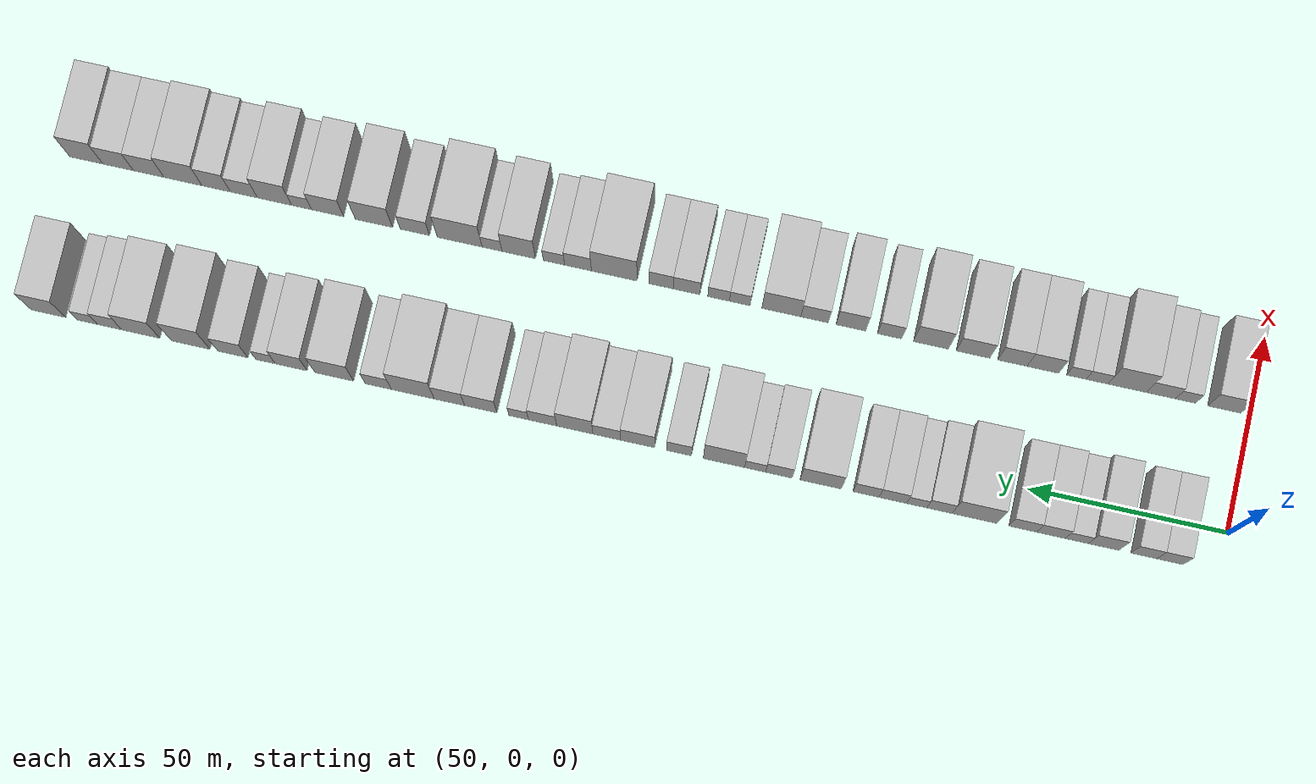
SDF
<sdf version="1.6">
 <world name="default">
  <model name="building_37">
   <static>1</static>
   <pose>50.0000 12.5911 0 0.000000 0.000000 0.000000</pose>
   <link name="link">
    <pose>0 0 7.50 0 0 0</pose>
    <collision name="collision"><geometry><box><size>20.0000 6.5872 15.0000</size></box></geometry></collision>
    <visual name="visual">
     <cast_shadows>0</cast_shadows>
     <geometry><box><size>20.0000 6.5872 15.0000</size></box></geometry>
     <material>
      <script>
       <uri>model://HANNAS_wall/materials/scripts</uri>
       <uri>model://HANNAS_wall/materials/textures</uri>
       <name>vrc/HANNAS_wall</name>
      </script>
     </material>
    </visual>
   </link>
  </model>
  <model name="building_38">
   <static>1</static>
   <pose>50.0000 19.1160 0 0.000000 0.000000 0.000000</pose>
   <link name="link">
    <pose>0 0 7.50 0 0 0</pose>
    <collision name="collision"><geometry><box><size>20.0000 6.4626 15.0000</size></box></geometry></collision>
    <visual name="visual">
     <cast_shadows>0</cast_shadows>
     <geometry><box><size>20.0000 6.4626 15.0000</size></box></geometry>
     <material>
      <script>
       <uri>model://HANNAS_wall/materials/scripts</uri>
       <uri>model://HANNAS_wall/materials/textures</uri>
       <name>vrc/HANNAS_wall</name>
      </script>
     </material>
    </visual>
   </link>
  </model>
  <model name="building_39">
   <static>1</static>
   <pose>50.0000 29.1546 0 0.000000 0.000000 0.000000</pose>
   <link name="link">
    <pose>0 0 9.00 0 0 0</pose>
    <collision name="collision"><geometry><box><size>20.0000 7.6145 18.0000</size></box></geometry></collision>
    <visual name="visual">
     <cast_shadows>0</cast_shadows>
     <geometry><box><size>20.0000 7.6145 18.0000</size></box></geometry>
     <material>
      <script>
       <uri>model://HANNAS_wall/materials/scripts</uri>
       <uri>model://HANNAS_wall/materials/textures</uri>
       <name>vrc/HANNAS_wall</name>
      </script>
     </material>
    </visual>
   </link>
  </model>
  <model name="building_40">
   <static>1</static>
   <pose>50.0000 35.8505 0 0.000000 0.000000 0.000000</pose>
   <link name="link">
    <pose>0 0 6.00 0 0 0</pose>
    <collision name="collision"><geometry><box><size>20.0000 5.7773 12.0000</size></box></geometry></collision>
    <visual name="visual">
     <cast_shadows>0</cast_shadows>
     <geometry><box><size>20.0000 5.7773 12.0000</size></box></geometry>
     <material>
      <script>
       <uri>model://HANNAS_wall/materials/scripts</uri>
       <uri>model://HANNAS_wall/materials/textures</uri>
       <name>vrc/HANNAS_wall</name>
      </script>
     </material>
    </visual>
   </link>
  </model>
  <model name="building_41">
   <static>1</static>
   <pose>50.0000 42.3434 0 0.000000 0.000000 0.000000</pose>
   <link name="link">
    <pose>0 0 7.50 0 0 0</pose>
    <collision name="collision"><geometry><box><size>20.0000 7.2085 15.0000</size></box></geometry></collision>
    <visual name="visual">
     <cast_shadows>0</cast_shadows>
     <geometry><box><size>20.0000 7.2085 15.0000</size></box></geometry>
     <material>
      <script>
       <uri>model://HANNAS_wall/materials/scripts</uri>
       <uri>model://HANNAS_wall/materials/textures</uri>
       <name>vrc/HANNAS_wall</name>
      </script>
     </material>
    </visual>
   </link>
  </model>
  <model name="building_42">
   <static>1</static>
   <pose>50.0000 49.4130 0 0.000000 0.000000 0.000000</pose>
   <link name="link">
    <pose>0 0 7.50 0 0 0</pose>
    <collision name="collision"><geometry><box><size>20.0000 6.9307 15.0000</size></box></geometry></collision>
    <visual name="visual">
     <cast_shadows>0</cast_shadows>
     <geometry><box><size>20.0000 6.9307 15.0000</size></box></geometry>
     <material>
      <script>
       <uri>model://HANNAS_wall/materials/scripts</uri>
       <uri>model://HANNAS_wall/materials/textures</uri>
       <name>vrc/HANNAS_wall</name>
      </script>
     </material>
    </visual>
   </link>
  </model>
  <model name="building_43">
   <static>1</static>
   <pose>50.0000 61.4989 0 0.000000 0.000000 0.000000</pose>
   <link name="link">
    <pose>0 0 12.00 0 0 0</pose>
    <collision name="collision"><geometry><box><size>20.0000 11.2410 24.0000</size></box></geometry></collision>
    <visual name="visual">
     <cast_shadows>0</cast_shadows>
     <geometry><box><size>20.0000 11.2410 24.0000</size></box></geometry>
     <material>
      <script>
       <uri>model://HANNAS_wall/materials/scripts</uri>
       <uri>model://HANNAS_wall/materials/textures</uri>
       <name>vrc/HANNAS_wall</name>
      </script>
     </material>
    </visual>
   </link>
  </model>
  <model name="building_44">
   <static>1</static>
   <pose>50.0000 70.3000 0 0.000000 0.000000 0.000000</pose>
   <link name="link">
    <pose>0 0 7.50 0 0 0</pose>
    <collision name="collision"><geometry><box><size>20.0000 6.3613 15.0000</size></box></geometry></collision>
    <visual name="visual">
     <cast_shadows>0</cast_shadows>
     <geometry><box><size>20.0000 6.3613 15.0000</size></box></geometry>
     <material>
      <script>
       <uri>model://HANNAS_wall/materials/scripts</uri>
       <uri>model://HANNAS_wall/materials/textures</uri>
       <name>vrc/HANNAS_wall</name>
      </script>
     </material>
    </visual>
   </link>
  </model>
  <model name="building_45">
   <static>1</static>
   <pose>50.0000 76.0259 0 0.000000 0.000000 0.000000</pose>
   <link name="link">
    <pose>0 0 6.00 0 0 0</pose>
    <collision name="collision"><geometry><box><size>20.0000 5.0905 12.0000</size></box></geometry></collision>
    <visual name="visual">
     <cast_shadows>0</cast_shadows>
     <geometry><box><size>20.0000 5.0905 12.0000</size></box></geometry>
     <material>
      <script>
       <uri>model://HANNAS_wall/materials/scripts</uri>
       <uri>model://HANNAS_wall/materials/textures</uri>
       <name>vrc/HANNAS_wall</name>
      </script>
     </material>
    </visual>
   </link>
  </model>
  <model name="building_46">
   <static>1</static>
   <pose>50.0000 82.0209 0 0.000000 0.000000 0.000000</pose>
   <link name="link">
    <pose>0 0 7.50 0 0 0</pose>
    <collision name="collision"><geometry><box><size>20.0000 6.8995 15.0000</size></box></geometry></collision>
    <visual name="visual">
     <cast_shadows>0</cast_shadows>
     <geometry><box><size>20.0000 6.8995 15.0000</size></box></geometry>
     <material>
      <script>
       <uri>model://HANNAS_wall/materials/scripts</uri>
       <uri>model://HANNAS_wall/materials/textures</uri>
       <name>vrc/HANNAS_wall</name>
      </script>
     </material>
    </visual>
   </link>
  </model>
  <model name="building_47">
   <static>1</static>
   <pose>50.0000 88.7367 0 0.000000 0.000000 0.000000</pose>
   <link name="link">
    <pose>0 0 7.50 0 0 0</pose>
    <collision name="collision"><geometry><box><size>20.0000 6.5323 15.0000</size></box></geometry></collision>
    <visual name="visual">
     <cast_shadows>0</cast_shadows>
     <geometry><box><size>20.0000 6.5323 15.0000</size></box></geometry>
     <material>
      <script>
       <uri>model://HANNAS_wall/materials/scripts</uri>
       <uri>model://HANNAS_wall/materials/textures</uri>
       <name>vrc/HANNAS_wall</name>
      </script>
     </material>
    </visual>
   </link>
  </model>
  <model name="building_48">
   <static>1</static>
   <pose>50.0000 100.1746 0 0.000000 0.000000 0.000000</pose>
   <link name="link">
    <pose>0 0 10.50 0 0 0</pose>
    <collision name="collision"><geometry><box><size>20.0000 10.3434 21.0000</size></box></geometry></collision>
    <visual name="visual">
     <cast_shadows>0</cast_shadows>
     <geometry><box><size>20.0000 10.3434 21.0000</size></box></geometry>
     <material>
      <script>
       <uri>model://HANNAS_wall/materials/scripts</uri>
       <uri>model://HANNAS_wall/materials/textures</uri>
       <name>vrc/HANNAS_wall</name>
      </script>
     </material>
    </visual>
   </link>
  </model>
  <model name="building_49">
   <static>1</static>
   <pose>50.0000 110.6861 0 0.000000 0.000000 0.000000</pose>
   <link name="link">
    <pose>0 0 7.50 0 0 0</pose>
    <collision name="collision"><geometry><box><size>20.0000 6.6797 15.0000</size></box></geometry></collision>
    <visual name="visual">
     <cast_shadows>0</cast_shadows>
     <geometry><box><size>20.0000 6.6797 15.0000</size></box></geometry>
     <material>
      <script>
       <uri>model://HANNAS_wall/materials/scripts</uri>
       <uri>model://HANNAS_wall/materials/textures</uri>
       <name>vrc/HANNAS_wall</name>
      </script>
     </material>
    </visual>
   </link>
  </model>
  <model name="building_50">
   <static>1</static>
   <pose>50.0000 116.6713 0 0.000000 0.000000 0.000000</pose>
   <link name="link">
    <pose>0 0 6.00 0 0 0</pose>
    <collision name="collision"><geometry><box><size>20.0000 5.2907 12.0000</size></box></geometry></collision>
    <visual name="visual">
     <cast_shadows>0</cast_shadows>
     <geometry><box><size>20.0000 5.2907 12.0000</size></box></geometry>
     <material>
      <script>
       <uri>model://HANNAS_wall/materials/scripts</uri>
       <uri>model://HANNAS_wall/materials/textures</uri>
       <name>vrc/HANNAS_wall</name>
      </script>
     </material>
    </visual>
   </link>
  </model>
  <model name="building_51">
   <static>1</static>
   <pose>50.0000 124.5184 0 0.000000 0.000000 0.000000</pose>
   <link name="link">
    <pose>0 0 12.00 0 0 0</pose>
    <collision name="collision"><geometry><box><size>20.0000 10.4035 24.0000</size></box></geometry></collision>
    <visual name="visual">
     <cast_shadows>0</cast_shadows>
     <geometry><box><size>20.0000 10.4035 24.0000</size></box></geometry>
     <material>
      <script>
       <uri>model://HANNAS_wall/materials/scripts</uri>
       <uri>model://HANNAS_wall/materials/textures</uri>
       <name>vrc/HANNAS_wall</name>
      </script>
     </material>
    </visual>
   </link>
  </model>
  <model name="building_52">
   <static>1</static>
   <pose>50.0000 135.8873 0 0.000000 0.000000 0.000000</pose>
   <link name="link">
    <pose>0 0 7.50 0 0 0</pose>
    <collision name="collision"><geometry><box><size>20.0000 6.3343 15.0000</size></box></geometry></collision>
    <visual name="visual">
     <cast_shadows>0</cast_shadows>
     <geometry><box><size>20.0000 6.3343 15.0000</size></box></geometry>
     <material>
      <script>
       <uri>model://HANNAS_wall/materials/scripts</uri>
       <uri>model://HANNAS_wall/materials/textures</uri>
       <name>vrc/HANNAS_wall</name>
      </script>
     </material>
    </visual>
   </link>
  </model>
  <model name="building_53">
   <static>1</static>
   <pose>50.0000 146.3460 0 0.000000 0.000000 0.000000</pose>
   <link name="link">
    <pose>0 0 9.00 0 0 0</pose>
    <collision name="collision"><geometry><box><size>20.0000 8.5831 18.0000</size></box></geometry></collision>
    <visual name="visual">
     <cast_shadows>0</cast_shadows>
     <geometry><box><size>20.0000 8.5831 18.0000</size></box></geometry>
     <material>
      <script>
       <uri>model://HANNAS_wall/materials/scripts</uri>
       <uri>model://HANNAS_wall/materials/textures</uri>
       <name>vrc/HANNAS_wall</name>
      </script>
     </material>
    </visual>
   </link>
  </model>
  <model name="building_54">
   <static>1</static>
   <pose>50.0000 154.1503 0 0.000000 0.000000 0.000000</pose>
   <link name="link">
    <pose>0 0 7.50 0 0 0</pose>
    <collision name="collision"><geometry><box><size>20.0000 7.0254 15.0000</size></box></geometry></collision>
    <visual name="visual">
     <cast_shadows>0</cast_shadows>
     <geometry><box><size>20.0000 7.0254 15.0000</size></box></geometry>
     <material>
      <script>
       <uri>model://HANNAS_wall/materials/scripts</uri>
       <uri>model://HANNAS_wall/materials/textures</uri>
       <name>vrc/HANNAS_wall</name>
      </script>
     </material>
    </visual>
   </link>
  </model>
  <model name="building_55">
   <static>1</static>
   <pose>50.0000 162.2373 0 0.000000 0.000000 0.000000</pose>
   <link name="link">
    <pose>0 0 10.50 0 0 0</pose>
    <collision name="collision"><geometry><box><size>20.0000 9.1486 21.0000</size></box></geometry></collision>
    <visual name="visual">
     <cast_shadows>0</cast_shadows>
     <geometry><box><size>20.0000 9.1486 21.0000</size></box></geometry>
     <material>
      <script>
       <uri>model://HANNAS_wall/materials/scripts</uri>
       <uri>model://HANNAS_wall/materials/textures</uri>
       <name>vrc/HANNAS_wall</name>
      </script>
     </material>
    </visual>
   </link>
  </model>
  <model name="building_56">
   <static>1</static>
   <pose>50.0000 170.3961 0 0.000000 0.000000 0.000000</pose>
   <link name="link">
    <pose>0 0 7.50 0 0 0</pose>
    <collision name="collision"><geometry><box><size>20.0000 7.1690 15.0000</size></box></geometry></collision>
    <visual name="visual">
     <cast_shadows>0</cast_shadows>
     <geometry><box><size>20.0000 7.1690 15.0000</size></box></geometry>
     <material>
      <script>
       <uri>model://HANNAS_wall/materials/scripts</uri>
       <uri>model://HANNAS_wall/materials/textures</uri>
       <name>vrc/HANNAS_wall</name>
      </script>
     </material>
    </visual>
   </link>
  </model>
  <model name="building_57">
   <static>1</static>
   <pose>50.0000 176.4554 0 0.000000 0.000000 0.000000</pose>
   <link name="link">
    <pose>0 0 6.00 0 0 0</pose>
    <collision name="collision"><geometry><box><size>20.0000 4.9496 12.0000</size></box></geometry></collision>
    <visual name="visual">
     <cast_shadows>0</cast_shadows>
     <geometry><box><size>20.0000 4.9496 12.0000</size></box></geometry>
     <material>
      <script>
       <uri>model://HANNAS_wall/materials/scripts</uri>
       <uri>model://HANNAS_wall/materials/textures</uri>
       <name>vrc/HANNAS_wall</name>
      </script>
     </material>
    </visual>
   </link>
  </model>
  <model name="building_58">
   <static>1</static>
   <pose>50.0000 186.0385 0 0.000000 0.000000 0.000000</pose>
   <link name="link">
    <pose>0 0 9.00 0 0 0</pose>
    <collision name="collision"><geometry><box><size>20.0000 8.2166 18.0000</size></box></geometry></collision>
    <visual name="visual">
     <cast_shadows>0</cast_shadows>
     <geometry><box><size>20.0000 8.2166 18.0000</size></box></geometry>
     <material>
      <script>
       <uri>model://HANNAS_wall/materials/scripts</uri>
       <uri>model://HANNAS_wall/materials/textures</uri>
       <name>vrc/HANNAS_wall</name>
      </script>
     </material>
    </visual>
   </link>
  </model>
  <model name="building_59">
   <static>1</static>
   <pose>50.0000 194.0281 0 0.000000 0.000000 0.000000</pose>
   <link name="link">
    <pose>0 0 9.00 0 0 0</pose>
    <collision name="collision"><geometry><box><size>20.0000 7.7626 18.0000</size></box></geometry></collision>
    <visual name="visual">
     <cast_shadows>0</cast_shadows>
     <geometry><box><size>20.0000 7.7626 18.0000</size></box></geometry>
     <material>
      <script>
       <uri>model://HANNAS_wall/materials/scripts</uri>
       <uri>model://HANNAS_wall/materials/textures</uri>
       <name>vrc/HANNAS_wall</name>
      </script>
     </material>
    </visual>
   </link>
  </model>
  <model name="building_60">
   <static>1</static>
   <pose>50.0000 203.3651 0 0.000000 0.000000 0.000000</pose>
   <link name="link">
    <pose>0 0 12.00 0 0 0</pose>
    <collision name="collision"><geometry><box><size>20.0000 10.9114 24.0000</size></box></geometry></collision>
    <visual name="visual">
     <cast_shadows>0</cast_shadows>
     <geometry><box><size>20.0000 10.9114 24.0000</size></box></geometry>
     <material>
      <script>
       <uri>model://HANNAS_wall/materials/scripts</uri>
       <uri>model://HANNAS_wall/materials/textures</uri>
       <name>vrc/HANNAS_wall</name>
      </script>
     </material>
    </visual>
   </link>
  </model>
  <model name="building_61">
   <static>1</static>
   <pose>50.0000 212.1412 0 0.000000 0.000000 0.000000</pose>
   <link name="link">
    <pose>0 0 7.50 0 0 0</pose>
    <collision name="collision"><geometry><box><size>20.0000 6.6408 15.0000</size></box></geometry></collision>
    <visual name="visual">
     <cast_shadows>0</cast_shadows>
     <geometry><box><size>20.0000 6.6408 15.0000</size></box></geometry>
     <material>
      <script>
       <uri>model://HANNAS_wall/materials/scripts</uri>
       <uri>model://HANNAS_wall/materials/textures</uri>
       <name>vrc/HANNAS_wall</name>
      </script>
     </material>
    </visual>
   </link>
  </model>
  <model name="building_62">
   <static>1</static>
   <pose>50.0000 223.3910 0 0.000000 0.000000 0.000000</pose>
   <link name="link">
    <pose>0 0 10.50 0 0 0</pose>
    <collision name="collision"><geometry><box><size>20.0000 9.8587 21.0000</size></box></geometry></collision>
    <visual name="visual">
     <cast_shadows>0</cast_shadows>
     <geometry><box><size>20.0000 9.8587 21.0000</size></box></geometry>
     <material>
      <script>
       <uri>model://HANNAS_wall/materials/scripts</uri>
       <uri>model://HANNAS_wall/materials/textures</uri>
       <name>vrc/HANNAS_wall</name>
      </script>
     </material>
    </visual>
   </link>
  </model>
  <model name="building_63">
   <static>1</static>
   <pose>50.0000 234.3536 0 0.000000 0.000000 0.000000</pose>
   <link name="link">
    <pose>0 0 9.00 0 0 0</pose>
    <collision name="collision"><geometry><box><size>20.0000 8.0664 18.0000</size></box></geometry></collision>
    <visual name="visual">
     <cast_shadows>0</cast_shadows>
     <geometry><box><size>20.0000 8.0664 18.0000</size></box></geometry>
     <material>
      <script>
       <uri>model://HANNAS_wall/materials/scripts</uri>
       <uri>model://HANNAS_wall/materials/textures</uri>
       <name>vrc/HANNAS_wall</name>
      </script>
     </material>
    </visual>
   </link>
  </model>
  <model name="building_64">
   <static>1</static>
   <pose>50.0000 240.9053 0 0.000000 0.000000 0.000000</pose>
   <link name="link">
    <pose>0 0 6.00 0 0 0</pose>
    <collision name="collision"><geometry><box><size>20.0000 5.0372 12.0000</size></box></geometry></collision>
    <visual name="visual">
     <cast_shadows>0</cast_shadows>
     <geometry><box><size>20.0000 5.0372 12.0000</size></box></geometry>
     <material>
      <script>
       <uri>model://HANNAS_wall/materials/scripts</uri>
       <uri>model://HANNAS_wall/materials/textures</uri>
       <name>vrc/HANNAS_wall</name>
      </script>
     </material>
    </visual>
   </link>
  </model>
  <model name="building_65">
   <static>1</static>
   <pose>50.0000 249.2791 0 0.000000 0.000000 0.000000</pose>
   <link name="link">
    <pose>0 0 9.00 0 0 0</pose>
    <collision name="collision"><geometry><box><size>20.0000 7.7104 18.0000</size></box></geometry></collision>
    <visual name="visual">
     <cast_shadows>0</cast_shadows>
     <geometry><box><size>20.0000 7.7104 18.0000</size></box></geometry>
     <material>
      <script>
       <uri>model://HANNAS_wall/materials/scripts</uri>
       <uri>model://HANNAS_wall/materials/textures</uri>
       <name>vrc/HANNAS_wall</name>
      </script>
     </material>
    </visual>
   </link>
  </model>
  <model name="building_66">
   <static>1</static>
   <pose>50.0000 260.0506 0 0.000000 0.000000 0.000000</pose>
   <link name="link">
    <pose>0 0 12.00 0 0 0</pose>
    <collision name="collision"><geometry><box><size>20.0000 9.8325 24.0000</size></box></geometry></collision>
    <visual name="visual">
     <cast_shadows>0</cast_shadows>
     <geometry><box><size>20.0000 9.8325 24.0000</size></box></geometry>
     <material>
      <script>
       <uri>model://HANNAS_wall/materials/scripts</uri>
       <uri>model://HANNAS_wall/materials/textures</uri>
       <name>vrc/HANNAS_wall</name>
      </script>
     </material>
    </visual>
   </link>
  </model>
  <model name="building_67">
   <static>1</static>
   <pose>50.0000 272.7957 0 0.000000 0.000000 0.000000</pose>
   <link name="link">
    <pose>0 0 10.50 0 0 0</pose>
    <collision name="collision"><geometry><box><size>20.0000 9.6578 21.0000</size></box></geometry></collision>
    <visual name="visual">
     <cast_shadows>0</cast_shadows>
     <geometry><box><size>20.0000 9.6578 21.0000</size></box></geometry>
     <material>
      <script>
       <uri>model://HANNAS_wall/materials/scripts</uri>
       <uri>model://HANNAS_wall/materials/textures</uri>
       <name>vrc/HANNAS_wall</name>
      </script>
     </material>
    </visual>
   </link>
  </model>
  <model name="building_68">
   <static>1</static>
   <pose>50.0000 280.7667 0 0.000000 0.000000 0.000000</pose>
   <link name="link">
    <pose>0 0 7.50 0 0 0</pose>
    <collision name="collision"><geometry><box><size>20.0000 6.2843 15.0000</size></box></geometry></collision>
    <visual name="visual">
     <cast_shadows>0</cast_shadows>
     <geometry><box><size>20.0000 6.2843 15.0000</size></box></geometry>
     <material>
      <script>
       <uri>model://HANNAS_wall/materials/scripts</uri>
       <uri>model://HANNAS_wall/materials/textures</uri>
       <name>vrc/HANNAS_wall</name>
      </script>
     </material>
    </visual>
   </link>
  </model>
  <model name="building_69">
   <static>1</static>
   <pose>50.0000 286.5224 0 0.000000 0.000000 0.000000</pose>
   <link name="link">
    <pose>0 0 6.00 0 0 0</pose>
    <collision name="collision"><geometry><box><size>20.0000 5.2271 12.0000</size></box></geometry></collision>
    <visual name="visual">
     <cast_shadows>0</cast_shadows>
     <geometry><box><size>20.0000 5.2271 12.0000</size></box></geometry>
     <material>
      <script>
       <uri>model://HANNAS_wall/materials/scripts</uri>
       <uri>model://HANNAS_wall/materials/textures</uri>
       <name>vrc/HANNAS_wall</name>
      </script>
     </material>
    </visual>
   </link>
  </model>
  <model name="building_70">
   <static>1</static>
   <pose>50.0000 296.5645 0 0.000000 0.000000 0.000000</pose>
   <link name="link">
    <pose>0 0 10.50 0 0 0</pose>
    <collision name="collision"><geometry><box><size>20.0000 8.8572 21.0000</size></box></geometry></collision>
    <visual name="visual">
     <cast_shadows>0</cast_shadows>
     <geometry><box><size>20.0000 8.8572 21.0000</size></box></geometry>
     <material>
      <script>
       <uri>model://HANNAS_wall/materials/scripts</uri>
       <uri>model://HANNAS_wall/materials/textures</uri>
       <name>vrc/HANNAS_wall</name>
      </script>
     </material>
    </visual>
   </link>
  </model>
  <model name="building_103">
   <static>1</static>
   <pose>90.0000 6.5659 0 0.000000 0.000000 0.000000</pose>
   <link name="link">
    <pose>0 0 9.00 0 0 0</pose>
    <collision name="collision"><geometry><box><size>20.0000 8.3223 18.0000</size></box></geometry></collision>
    <visual name="visual">
     <cast_shadows>0</cast_shadows>
     <geometry><box><size>20.0000 8.3223 18.0000</size></box></geometry>
     <material>
      <script>
       <uri>model://HANNAS_wall/materials/scripts</uri>
       <uri>model://HANNAS_wall/materials/textures</uri>
       <name>vrc/HANNAS_wall</name>
      </script>
     </material>
    </visual>
   </link>
  </model>
  <model name="building_104">
   <static>1</static>
   <pose>90.0000 16.2700 0 0.000000 0.000000 0.000000</pose>
   <link name="link">
    <pose>0 0 6.00 0 0 0</pose>
    <collision name="collision"><geometry><box><size>20.0000 5.0860 12.0000</size></box></geometry></collision>
    <visual name="visual">
     <cast_shadows>0</cast_shadows>
     <geometry><box><size>20.0000 5.0860 12.0000</size></box></geometry>
     <material>
      <script>
       <uri>model://HANNAS_wall/materials/scripts</uri>
       <uri>model://HANNAS_wall/materials/textures</uri>
       <name>vrc/HANNAS_wall</name>
      </script>
     </material>
    </visual>
   </link>
  </model>
  <model name="building_105">
   <static>1</static>
   <pose>90.0000 22.4797 0 0.000000 0.000000 0.000000</pose>
   <link name="link">
    <pose>0 0 7.50 0 0 0</pose>
    <collision name="collision"><geometry><box><size>20.0000 7.3333 15.0000</size></box></geometry></collision>
    <visual name="visual">
     <cast_shadows>0</cast_shadows>
     <geometry><box><size>20.0000 7.3333 15.0000</size></box></geometry>
     <material>
      <script>
       <uri>model://HANNAS_wall/materials/scripts</uri>
       <uri>model://HANNAS_wall/materials/textures</uri>
       <name>vrc/HANNAS_wall</name>
      </script>
     </material>
    </visual>
   </link>
  </model>
  <model name="building_106">
   <static>1</static>
   <pose>90.0000 31.0163 0 0.000000 0.000000 0.000000</pose>
   <link name="link">
    <pose>0 0 12.00 0 0 0</pose>
    <collision name="collision"><geometry><box><size>20.0000 9.7400 24.0000</size></box></geometry></collision>
    <visual name="visual">
     <cast_shadows>0</cast_shadows>
     <geometry><box><size>20.0000 9.7400 24.0000</size></box></geometry>
     <material>
      <script>
       <uri>model://HANNAS_wall/materials/scripts</uri>
       <uri>model://HANNAS_wall/materials/textures</uri>
       <name>vrc/HANNAS_wall</name>
      </script>
     </material>
    </visual>
   </link>
  </model>
  <model name="building_107">
   <static>1</static>
   <pose>90.0000 38.6161 0 0.000000 0.000000 0.000000</pose>
   <link name="link">
    <pose>0 0 6.00 0 0 0</pose>
    <collision name="collision"><geometry><box><size>20.0000 5.4595 12.0000</size></box></geometry></collision>
    <visual name="visual">
     <cast_shadows>0</cast_shadows>
     <geometry><box><size>20.0000 5.4595 12.0000</size></box></geometry>
     <material>
      <script>
       <uri>model://HANNAS_wall/materials/scripts</uri>
       <uri>model://HANNAS_wall/materials/textures</uri>
       <name>vrc/HANNAS_wall</name>
      </script>
     </material>
    </visual>
   </link>
  </model>
  <model name="building_108">
   <static>1</static>
   <pose>90.0000 43.8108 0 0.000000 0.000000 0.000000</pose>
   <link name="link">
    <pose>0 0 6.00 0 0 0</pose>
    <collision name="collision"><geometry><box><size>20.0000 4.9299 12.0000</size></box></geometry></collision>
    <visual name="visual">
     <cast_shadows>0</cast_shadows>
     <geometry><box><size>20.0000 4.9299 12.0000</size></box></geometry>
     <material>
      <script>
       <uri>model://HANNAS_wall/materials/scripts</uri>
       <uri>model://HANNAS_wall/materials/textures</uri>
       <name>vrc/HANNAS_wall</name>
      </script>
     </material>
    </visual>
   </link>
  </model>
  <model name="building_109">
   <static>1</static>
   <pose>90.0000 52.2896 0 0.000000 0.000000 0.000000</pose>
   <link name="link">
    <pose>0 0 9.00 0 0 0</pose>
    <collision name="collision"><geometry><box><size>20.0000 8.0279 18.0000</size></box></geometry></collision>
    <visual name="visual">
     <cast_shadows>0</cast_shadows>
     <geometry><box><size>20.0000 8.0279 18.0000</size></box></geometry>
     <material>
      <script>
       <uri>model://HANNAS_wall/materials/scripts</uri>
       <uri>model://HANNAS_wall/materials/textures</uri>
       <name>vrc/HANNAS_wall</name>
      </script>
     </material>
    </visual>
   </link>
  </model>
  <model name="building_110">
   <static>1</static>
   <pose>90.0000 60.0056 0 0.000000 0.000000 0.000000</pose>
   <link name="link">
    <pose>0 0 9.00 0 0 0</pose>
    <collision name="collision"><geometry><box><size>20.0000 7.4041 18.0000</size></box></geometry></collision>
    <visual name="visual">
     <cast_shadows>0</cast_shadows>
     <geometry><box><size>20.0000 7.4041 18.0000</size></box></geometry>
     <material>
      <script>
       <uri>model://HANNAS_wall/materials/scripts</uri>
       <uri>model://HANNAS_wall/materials/textures</uri>
       <name>vrc/HANNAS_wall</name>
      </script>
     </material>
    </visual>
   </link>
  </model>
  <model name="building_111">
   <static>1</static>
   <pose>90.0000 69.9619 0 0.000000 0.000000 0.000000</pose>
   <link name="link">
    <pose>0 0 9.00 0 0 0</pose>
    <collision name="collision"><geometry><box><size>20.0000 8.5085 18.0000</size></box></geometry></collision>
    <visual name="visual">
     <cast_shadows>0</cast_shadows>
     <geometry><box><size>20.0000 8.5085 18.0000</size></box></geometry>
     <material>
      <script>
       <uri>model://HANNAS_wall/materials/scripts</uri>
       <uri>model://HANNAS_wall/materials/textures</uri>
       <name>vrc/HANNAS_wall</name>
      </script>
     </material>
    </visual>
   </link>
  </model>
  <model name="building_112">
   <static>1</static>
   <pose>90.0000 80.6357 0 0.000000 0.000000 0.000000</pose>
   <link name="link">
    <pose>0 0 10.50 0 0 0</pose>
    <collision name="collision"><geometry><box><size>20.0000 8.8390 21.0000</size></box></geometry></collision>
    <visual name="visual">
     <cast_shadows>0</cast_shadows>
     <geometry><box><size>20.0000 8.8390 21.0000</size></box></geometry>
     <material>
      <script>
       <uri>model://HANNAS_wall/materials/scripts</uri>
       <uri>model://HANNAS_wall/materials/textures</uri>
       <name>vrc/HANNAS_wall</name>
      </script>
     </material>
    </visual>
   </link>
  </model>
  <model name="building_113">
   <static>1</static>
   <pose>90.0000 91.1337 0 0.000000 0.000000 0.000000</pose>
   <link name="link">
    <pose>0 0 7.50 0 0 0</pose>
    <collision name="collision"><geometry><box><size>20.0000 6.1571 15.0000</size></box></geometry></collision>
    <visual name="visual">
     <cast_shadows>0</cast_shadows>
     <geometry><box><size>20.0000 6.1571 15.0000</size></box></geometry>
     <material>
      <script>
       <uri>model://HANNAS_wall/materials/scripts</uri>
       <uri>model://HANNAS_wall/materials/textures</uri>
       <name>vrc/HANNAS_wall</name>
      </script>
     </material>
    </visual>
   </link>
  </model>
  <model name="building_114">
   <static>1</static>
   <pose>90.0000 100.9513 0 0.000000 0.000000 0.000000</pose>
   <link name="link">
    <pose>0 0 9.00 0 0 0</pose>
    <collision name="collision"><geometry><box><size>20.0000 7.4780 18.0000</size></box></geometry></collision>
    <visual name="visual">
     <cast_shadows>0</cast_shadows>
     <geometry><box><size>20.0000 7.4780 18.0000</size></box></geometry>
     <material>
      <script>
       <uri>model://HANNAS_wall/materials/scripts</uri>
       <uri>model://HANNAS_wall/materials/textures</uri>
       <name>vrc/HANNAS_wall</name>
      </script>
     </material>
    </visual>
   </link>
  </model>
  <model name="building_115">
   <static>1</static>
   <pose>90.0000 110.1825 0 0.000000 0.000000 0.000000</pose>
   <link name="link">
    <pose>0 0 7.50 0 0 0</pose>
    <collision name="collision"><geometry><box><size>20.0000 6.9844 15.0000</size></box></geometry></collision>
    <visual name="visual">
     <cast_shadows>0</cast_shadows>
     <geometry><box><size>20.0000 6.9844 15.0000</size></box></geometry>
     <material>
      <script>
       <uri>model://HANNAS_wall/materials/scripts</uri>
       <uri>model://HANNAS_wall/materials/textures</uri>
       <name>vrc/HANNAS_wall</name>
      </script>
     </material>
    </visual>
   </link>
  </model>
  <model name="building_116">
   <static>1</static>
   <pose>90.0000 118.6432 0 0.000000 0.000000 0.000000</pose>
   <link name="link">
    <pose>0 0 10.50 0 0 0</pose>
    <collision name="collision"><geometry><box><size>20.0000 9.9372 21.0000</size></box></geometry></collision>
    <visual name="visual">
     <cast_shadows>0</cast_shadows>
     <geometry><box><size>20.0000 9.9372 21.0000</size></box></geometry>
     <material>
      <script>
       <uri>model://HANNAS_wall/materials/scripts</uri>
       <uri>model://HANNAS_wall/materials/textures</uri>
       <name>vrc/HANNAS_wall</name>
      </script>
     </material>
    </visual>
   </link>
  </model>
  <model name="building_117">
   <static>1</static>
   <pose>90.0000 129.2383 0 0.000000 0.000000 0.000000</pose>
   <link name="link">
    <pose>0 0 6.00 0 0 0</pose>
    <collision name="collision"><geometry><box><size>20.0000 5.2531 12.0000</size></box></geometry></collision>
    <visual name="visual">
     <cast_shadows>0</cast_shadows>
     <geometry><box><size>20.0000 5.2531 12.0000</size></box></geometry>
     <material>
      <script>
       <uri>model://HANNAS_wall/materials/scripts</uri>
       <uri>model://HANNAS_wall/materials/textures</uri>
       <name>vrc/HANNAS_wall</name>
      </script>
     </material>
    </visual>
   </link>
  </model>
  <model name="building_118">
   <static>1</static>
   <pose>90.0000 134.6284 0 0.000000 0.000000 0.000000</pose>
   <link name="link">
    <pose>0 0 6.00 0 0 0</pose>
    <collision name="collision"><geometry><box><size>20.0000 5.5270 12.0000</size></box></geometry></collision>
    <visual name="visual">
     <cast_shadows>0</cast_shadows>
     <geometry><box><size>20.0000 5.5270 12.0000</size></box></geometry>
     <material>
      <script>
       <uri>model://HANNAS_wall/materials/scripts</uri>
       <uri>model://HANNAS_wall/materials/textures</uri>
       <name>vrc/HANNAS_wall</name>
      </script>
     </material>
    </visual>
   </link>
  </model>
  <model name="building_119">
   <static>1</static>
   <pose>90.0000 142.8016 0 0.000000 0.000000 0.000000</pose>
   <link name="link">
    <pose>0 0 7.50 0 0 0</pose>
    <collision name="collision"><geometry><box><size>20.0000 6.8195 15.0000</size></box></geometry></collision>
    <visual name="visual">
     <cast_shadows>0</cast_shadows>
     <geometry><box><size>20.0000 6.8195 15.0000</size></box></geometry>
     <material>
      <script>
       <uri>model://HANNAS_wall/materials/scripts</uri>
       <uri>model://HANNAS_wall/materials/textures</uri>
       <name>vrc/HANNAS_wall</name>
      </script>
     </material>
    </visual>
   </link>
  </model>
  <model name="building_120">
   <static>1</static>
   <pose>90.0000 149.3206 0 0.000000 0.000000 0.000000</pose>
   <link name="link">
    <pose>0 0 7.50 0 0 0</pose>
    <collision name="collision"><geometry><box><size>20.0000 6.2185 15.0000</size></box></geometry></collision>
    <visual name="visual">
     <cast_shadows>0</cast_shadows>
     <geometry><box><size>20.0000 6.2185 15.0000</size></box></geometry>
     <material>
      <script>
       <uri>model://HANNAS_wall/materials/scripts</uri>
       <uri>model://HANNAS_wall/materials/textures</uri>
       <name>vrc/HANNAS_wall</name>
      </script>
     </material>
    </visual>
   </link>
  </model>
  <model name="building_121">
   <static>1</static>
   <pose>90.0000 161.2805 0 0.000000 0.000000 0.000000</pose>
   <link name="link">
    <pose>0 0 12.00 0 0 0</pose>
    <collision name="collision"><geometry><box><size>20.0000 11.7012 24.0000</size></box></geometry></collision>
    <visual name="visual">
     <cast_shadows>0</cast_shadows>
     <geometry><box><size>20.0000 11.7012 24.0000</size></box></geometry>
     <material>
      <script>
       <uri>model://HANNAS_wall/materials/scripts</uri>
       <uri>model://HANNAS_wall/materials/textures</uri>
       <name>vrc/HANNAS_wall</name>
      </script>
     </material>
    </visual>
   </link>
  </model>
  <model name="building_122">
   <static>1</static>
   <pose>90.0000 170.5523 0 0.000000 0.000000 0.000000</pose>
   <link name="link">
    <pose>0 0 7.50 0 0 0</pose>
    <collision name="collision"><geometry><box><size>20.0000 6.8425 15.0000</size></box></geometry></collision>
    <visual name="visual">
     <cast_shadows>0</cast_shadows>
     <geometry><box><size>20.0000 6.8425 15.0000</size></box></geometry>
     <material>
      <script>
       <uri>model://HANNAS_wall/materials/scripts</uri>
       <uri>model://HANNAS_wall/materials/textures</uri>
       <name>vrc/HANNAS_wall</name>
      </script>
     </material>
    </visual>
   </link>
  </model>
  <model name="building_123">
   <static>1</static>
   <pose>90.0000 176.7026 0 0.000000 0.000000 0.000000</pose>
   <link name="link">
    <pose>0 0 6.00 0 0 0</pose>
    <collision name="collision"><geometry><box><size>20.0000 5.4581 12.0000</size></box></geometry></collision>
    <visual name="visual">
     <cast_shadows>0</cast_shadows>
     <geometry><box><size>20.0000 5.4581 12.0000</size></box></geometry>
     <material>
      <script>
       <uri>model://HANNAS_wall/materials/scripts</uri>
       <uri>model://HANNAS_wall/materials/textures</uri>
       <name>vrc/HANNAS_wall</name>
      </script>
     </material>
    </visual>
   </link>
  </model>
  <model name="building_124">
   <static>1</static>
   <pose>90.0000 185.7021 0 0.000000 0.000000 0.000000</pose>
   <link name="link">
    <pose>0 0 10.50 0 0 0</pose>
    <collision name="collision"><geometry><box><size>20.0000 8.5408 21.0000</size></box></geometry></collision>
    <visual name="visual">
     <cast_shadows>0</cast_shadows>
     <geometry><box><size>20.0000 8.5408 21.0000</size></box></geometry>
     <material>
      <script>
       <uri>model://HANNAS_wall/materials/scripts</uri>
       <uri>model://HANNAS_wall/materials/textures</uri>
       <name>vrc/HANNAS_wall</name>
      </script>
     </material>
    </visual>
   </link>
  </model>
  <model name="building_125">
   <static>1</static>
   <pose>90.0000 192.5334 0 0.000000 0.000000 0.000000</pose>
   <link name="link">
    <pose>0 0 6.00 0 0 0</pose>
    <collision name="collision"><geometry><box><size>20.0000 5.1218 12.0000</size></box></geometry></collision>
    <visual name="visual">
     <cast_shadows>0</cast_shadows>
     <geometry><box><size>20.0000 5.1218 12.0000</size></box></geometry>
     <material>
      <script>
       <uri>model://HANNAS_wall/materials/scripts</uri>
       <uri>model://HANNAS_wall/materials/textures</uri>
       <name>vrc/HANNAS_wall</name>
      </script>
     </material>
    </visual>
   </link>
  </model>
  <model name="building_126">
   <static>1</static>
   <pose>90.0000 200.8511 0 0.000000 0.000000 0.000000</pose>
   <link name="link">
    <pose>0 0 12.00 0 0 0</pose>
    <collision name="collision"><geometry><box><size>20.0000 11.5136 24.0000</size></box></geometry></collision>
    <visual name="visual">
     <cast_shadows>0</cast_shadows>
     <geometry><box><size>20.0000 11.5136 24.0000</size></box></geometry>
     <material>
      <script>
       <uri>model://HANNAS_wall/materials/scripts</uri>
       <uri>model://HANNAS_wall/materials/textures</uri>
       <name>vrc/HANNAS_wall</name>
      </script>
     </material>
    </visual>
   </link>
  </model>
  <model name="building_127">
   <static>1</static>
   <pose>90.0000 212.3576 0 0.000000 0.000000 0.000000</pose>
   <link name="link">
    <pose>0 0 7.50 0 0 0</pose>
    <collision name="collision"><geometry><box><size>20.0000 7.4994 15.0000</size></box></geometry></collision>
    <visual name="visual">
     <cast_shadows>0</cast_shadows>
     <geometry><box><size>20.0000 7.4994 15.0000</size></box></geometry>
     <material>
      <script>
       <uri>model://HANNAS_wall/materials/scripts</uri>
       <uri>model://HANNAS_wall/materials/textures</uri>
       <name>vrc/HANNAS_wall</name>
      </script>
     </material>
    </visual>
   </link>
  </model>
  <model name="building_128">
   <static>1</static>
   <pose>90.0000 222.8947 0 0.000000 0.000000 0.000000</pose>
   <link name="link">
    <pose>0 0 10.50 0 0 0</pose>
    <collision name="collision"><geometry><box><size>20.0000 9.5748 21.0000</size></box></geometry></collision>
    <visual name="visual">
     <cast_shadows>0</cast_shadows>
     <geometry><box><size>20.0000 9.5748 21.0000</size></box></geometry>
     <material>
      <script>
       <uri>model://HANNAS_wall/materials/scripts</uri>
       <uri>model://HANNAS_wall/materials/textures</uri>
       <name>vrc/HANNAS_wall</name>
      </script>
     </material>
    </visual>
   </link>
  </model>
  <model name="building_129">
   <static>1</static>
   <pose>90.0000 234.8328 0 0.000000 0.000000 0.000000</pose>
   <link name="link">
    <pose>0 0 9.00 0 0 0</pose>
    <collision name="collision"><geometry><box><size>20.0000 8.3014 18.0000</size></box></geometry></collision>
    <visual name="visual">
     <cast_shadows>0</cast_shadows>
     <geometry><box><size>20.0000 8.3014 18.0000</size></box></geometry>
     <material>
      <script>
       <uri>model://HANNAS_wall/materials/scripts</uri>
       <uri>model://HANNAS_wall/materials/textures</uri>
       <name>vrc/HANNAS_wall</name>
      </script>
     </material>
    </visual>
   </link>
  </model>
  <model name="building_130">
   <static>1</static>
   <pose>90.0000 241.5230 0 0.000000 0.000000 0.000000</pose>
   <link name="link">
    <pose>0 0 6.00 0 0 0</pose>
    <collision name="collision"><geometry><box><size>20.0000 5.0791 12.0000</size></box></geometry></collision>
    <visual name="visual">
     <cast_shadows>0</cast_shadows>
     <geometry><box><size>20.0000 5.0791 12.0000</size></box></geometry>
     <material>
      <script>
       <uri>model://HANNAS_wall/materials/scripts</uri>
       <uri>model://HANNAS_wall/materials/textures</uri>
       <name>vrc/HANNAS_wall</name>
      </script>
     </material>
    </visual>
   </link>
  </model>
  <model name="building_131">
   <static>1</static>
   <pose>90.0000 248.4903 0 0.000000 0.000000 0.000000</pose>
   <link name="link">
    <pose>0 0 10.50 0 0 0</pose>
    <collision name="collision"><geometry><box><size>20.0000 8.8554 21.0000</size></box></geometry></collision>
    <visual name="visual">
     <cast_shadows>0</cast_shadows>
     <geometry><box><size>20.0000 8.8554 21.0000</size></box></geometry>
     <material>
      <script>
       <uri>model://HANNAS_wall/materials/scripts</uri>
       <uri>model://HANNAS_wall/materials/textures</uri>
       <name>vrc/HANNAS_wall</name>
      </script>
     </material>
    </visual>
   </link>
  </model>
  <model name="building_132">
   <static>1</static>
   <pose>90.0000 256.4209 0 0.000000 0.000000 0.000000</pose>
   <link name="link">
    <pose>0 0 7.50 0 0 0</pose>
    <collision name="collision"><geometry><box><size>20.0000 7.0059 15.0000</size></box></geometry></collision>
    <visual name="visual">
     <cast_shadows>0</cast_shadows>
     <geometry><box><size>20.0000 7.0059 15.0000</size></box></geometry>
     <material>
      <script>
       <uri>model://HANNAS_wall/materials/scripts</uri>
       <uri>model://HANNAS_wall/materials/textures</uri>
       <name>vrc/HANNAS_wall</name>
      </script>
     </material>
    </visual>
   </link>
  </model>
  <model name="building_133">
   <static>1</static>
   <pose>90.0000 263.5910 0 0.000000 0.000000 0.000000</pose>
   <link name="link">
    <pose>0 0 9.00 0 0 0</pose>
    <collision name="collision"><geometry><box><size>20.0000 7.3343 18.0000</size></box></geometry></collision>
    <visual name="visual">
     <cast_shadows>0</cast_shadows>
     <geometry><box><size>20.0000 7.3343 18.0000</size></box></geometry>
     <material>
      <script>
       <uri>model://HANNAS_wall/materials/scripts</uri>
       <uri>model://HANNAS_wall/materials/textures</uri>
       <name>vrc/HANNAS_wall</name>
      </script>
     </material>
    </visual>
   </link>
  </model>
  <model name="building_134">
   <static>1</static>
   <pose>90.0000 272.1588 0 0.000000 0.000000 0.000000</pose>
   <link name="link">
    <pose>0 0 10.50 0 0 0</pose>
    <collision name="collision"><geometry><box><size>20.0000 9.8012 21.0000</size></box></geometry></collision>
    <visual name="visual">
     <cast_shadows>0</cast_shadows>
     <geometry><box><size>20.0000 9.8012 21.0000</size></box></geometry>
     <material>
      <script>
       <uri>model://HANNAS_wall/materials/scripts</uri>
       <uri>model://HANNAS_wall/materials/textures</uri>
       <name>vrc/HANNAS_wall</name>
      </script>
     </material>
    </visual>
   </link>
  </model>
  <model name="building_135">
   <static>1</static>
   <pose>90.0000 281.0487 0 0.000000 0.000000 0.000000</pose>
   <link name="link">
    <pose>0 0 9.00 0 0 0</pose>
    <collision name="collision"><geometry><box><size>20.0000 7.9786 18.0000</size></box></geometry></collision>
    <visual name="visual">
     <cast_shadows>0</cast_shadows>
     <geometry><box><size>20.0000 7.9786 18.0000</size></box></geometry>
     <material>
      <script>
       <uri>model://HANNAS_wall/materials/scripts</uri>
       <uri>model://HANNAS_wall/materials/textures</uri>
       <name>vrc/HANNAS_wall</name>
      </script>
     </material>
    </visual>
   </link>
  </model>
  <model name="building_136">
   <static>1</static>
   <pose>90.0000 288.9949 0 0.000000 0.000000 0.000000</pose>
   <link name="link">
    <pose>0 0 9.00 0 0 0</pose>
    <collision name="collision"><geometry><box><size>20.0000 7.9137 18.0000</size></box></geometry></collision>
    <visual name="visual">
     <cast_shadows>0</cast_shadows>
     <geometry><box><size>20.0000 7.9137 18.0000</size></box></geometry>
     <material>
      <script>
       <uri>model://HANNAS_wall/materials/scripts</uri>
       <uri>model://HANNAS_wall/materials/textures</uri>
       <name>vrc/HANNAS_wall</name>
      </script>
     </material>
    </visual>
   </link>
  </model>
  <model name="building_137">
   <static>1</static>
   <pose>90.0000 297.2315 0 0.000000 0.000000 0.000000</pose>
   <link name="link">
    <pose>0 0 10.50 0 0 0</pose>
    <collision name="collision"><geometry><box><size>20.0000 8.5594 21.0000</size></box></geometry></collision>
    <visual name="visual">
     <cast_shadows>0</cast_shadows>
     <geometry><box><size>20.0000 8.5594 21.0000</size></box></geometry>
     <material>
      <script>
       <uri>model://HANNAS_wall/materials/scripts</uri>
       <uri>model://HANNAS_wall/materials/textures</uri>
       <name>vrc/HANNAS_wall</name>
      </script>
     </material>
    </visual>
   </link>
  </model>
 </world>
</sdf>
